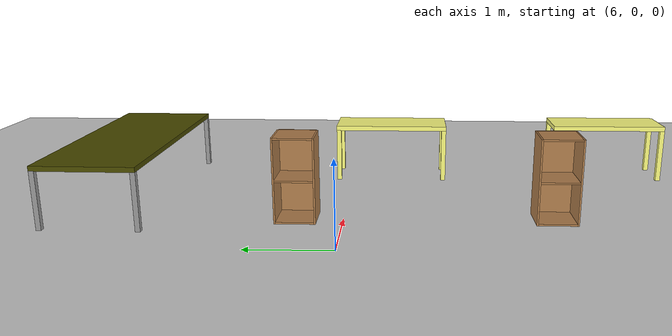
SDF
<sdf version="1.6">
 <world name="default">
  <model name="ground_plane">
   <static>1</static>
   <link name="link">
    <collision name="collision">
     <geometry><plane><normal>0 0 1</normal><size>100 100</size></plane></geometry>
     <surface><friction><ode><mu>100</mu><mu2>50</mu2></ode></friction></surface>
    </collision>
    <visual name="visual">
     <cast_shadows>0</cast_shadows>
     <geometry><plane><normal>0 0 1</normal><size>100 100</size></plane></geometry>
     <material>
      <script><uri>file://media/materials/scripts/gazebo.material</uri><name>Gazebo/Grey</name></script>
     </material>
    </visual>
   </link>
  </model>
  <model name="table_clone_6">
   <link name="link_0">
    <pose>0 2e-06 0.304 0 -0 0</pose>
    <inertial>
     <mass>1</mass>
     <inertia>
      <ixx>0.166667</ixx>
      <ixy>0</ixy>
      <ixz>0</ixz>
      <iyy>0.166667</iyy>
      <iyz>0</iyz>
      <izz>0.166667</izz>
     </inertia>
    </inertial>
    <visual name="visual">
     <geometry><box><size>0.6 1.5 0.06</size></box></geometry>
     <material>
      <lighting>1</lighting>
      <script><uri>file://media/materials/scripts/gazebo.material</uri><name>Gazebo/Grey</name></script>
      <shader type="pixel"><normal_map>__default__</normal_map></shader>
      <ambient>1 1 0.5 1</ambient>
      <diffuse>0.7 0.7 0.7 1</diffuse>
      <specular>0.01 0.01 0.01 1</specular>
      <emissive>0 0 0 1</emissive>
     </material>
    </visual>
    <collision name="collision">
     <geometry><box><size>0.6 1.5 0.06</size></box></geometry>
     <surface>
      <friction>
       <ode><mu>1</mu><mu2>1</mu2><fdir1>0 0 0</fdir1><slip1>0</slip1><slip2>0</slip2></ode>
       <torsional>
        <coefficient>1</coefficient>
        <patch_radius>0</patch_radius>
        <surface_radius>0</surface_radius>
        <use_patch_radius>1</use_patch_radius>
        <ode><slip>0</slip></ode>
       </torsional>
      </friction>
      <bounce><restitution_coefficient>0</restitution_coefficient><threshold>1e+06</threshold></bounce>
      <contact>
       <collide_without_contact>0</collide_without_contact>
       <collide_without_contact_bitmask>1</collide_without_contact_bitmask>
       <collide_bitmask>1</collide_bitmask>
       <ode>
        <soft_cfm>0</soft_cfm>
        <soft_erp>0.2</soft_erp>
        <kp>1e+13</kp>
        <kd>1</kd>
        <max_vel>0.01</max_vel>
        <min_depth>0</min_depth>
       </ode>
       <bullet>
        <split_impulse>1</split_impulse>
        <split_impulse_penetration_threshold>-0.01</split_impulse_penetration_threshold>
        <soft_cfm>0</soft_cfm>
        <soft_erp>0.2</soft_erp>
        <kp>1e+13</kp>
        <kd>1</kd>
       </bullet>
      </contact>
     </surface>
    </collision>
   </link>
   <link name="link_1">
    <pose>0.27 -0.719998 -0.076 0 -0 0</pose>
    <inertial>
     <mass>1</mass>
     <inertia>
      <ixx>0.166667</ixx>
      <ixy>0</ixy>
      <ixz>0</ixz>
      <iyy>0.166667</iyy>
      <iyz>0</iyz>
      <izz>0.166667</izz>
     </inertia>
    </inertial>
    <visual name="visual">
     <geometry><box><size>0.06 0.06 0.7</size></box></geometry>
     <material>
      <lighting>1</lighting>
      <script><uri>file://media/materials/scripts/gazebo.material</uri><name>Gazebo/Grey</name></script>
      <shader type="pixel"><normal_map>__default__</normal_map></shader>
      <ambient>1 1 0.5 1</ambient>
      <diffuse>0.7 0.7 0.7 1</diffuse>
      <specular>0.01 0.01 0.01 1</specular>
      <emissive>0 0 0 1</emissive>
     </material>
    </visual>
    <collision name="collision">
     <geometry><box><size>0.06 0.06 0.7</size></box></geometry>
     <surface>
      <friction>
       <ode><mu>1</mu><mu2>1</mu2><fdir1>0 0 0</fdir1><slip1>0</slip1><slip2>0</slip2></ode>
       <torsional>
        <coefficient>1</coefficient>
        <patch_radius>0</patch_radius>
        <surface_radius>0</surface_radius>
        <use_patch_radius>1</use_patch_radius>
        <ode><slip>0</slip></ode>
       </torsional>
      </friction>
      <bounce><restitution_coefficient>0</restitution_coefficient><threshold>1e+06</threshold></bounce>
      <contact>
       <collide_without_contact>0</collide_without_contact>
       <collide_without_contact_bitmask>1</collide_without_contact_bitmask>
       <collide_bitmask>1</collide_bitmask>
       <ode>
        <soft_cfm>0</soft_cfm>
        <soft_erp>0.2</soft_erp>
        <kp>1e+13</kp>
        <kd>1</kd>
        <max_vel>0.01</max_vel>
        <min_depth>0</min_depth>
       </ode>
       <bullet>
        <split_impulse>1</split_impulse>
        <split_impulse_penetration_threshold>-0.01</split_impulse_penetration_threshold>
        <soft_cfm>0</soft_cfm>
        <soft_erp>0.2</soft_erp>
        <kp>1e+13</kp>
        <kd>1</kd>
       </bullet>
      </contact>
     </surface>
    </collision>
   </link>
   <link name="link_1_clone">
    <pose>-0.27 -0.719998 -0.076 0 -0 0</pose>
    <inertial>
     <mass>1</mass>
     <inertia>
      <ixx>0.166667</ixx>
      <ixy>0</ixy>
      <ixz>0</ixz>
      <iyy>0.166667</iyy>
      <iyz>0</iyz>
      <izz>0.166667</izz>
     </inertia>
    </inertial>
    <visual name="visual">
     <geometry><box><size>0.06 0.06 0.7</size></box></geometry>
     <material>
      <lighting>1</lighting>
      <script><uri>file://media/materials/scripts/gazebo.material</uri><name>Gazebo/Grey</name></script>
      <shader type="pixel"><normal_map>__default__</normal_map></shader>
      <ambient>1 1 0.5 1</ambient>
      <diffuse>0.7 0.7 0.7 1</diffuse>
      <specular>0.01 0.01 0.01 1</specular>
      <emissive>0 0 0 1</emissive>
     </material>
    </visual>
    <collision name="collision">
     <geometry><box><size>0.06 0.06 0.7</size></box></geometry>
     <surface>
      <friction>
       <ode><mu>1</mu><mu2>1</mu2><fdir1>0 0 0</fdir1><slip1>0</slip1><slip2>0</slip2></ode>
       <torsional>
        <coefficient>1</coefficient>
        <patch_radius>0</patch_radius>
        <surface_radius>0</surface_radius>
        <use_patch_radius>1</use_patch_radius>
        <ode><slip>0</slip></ode>
       </torsional>
      </friction>
      <bounce><restitution_coefficient>0</restitution_coefficient><threshold>1e+06</threshold></bounce>
      <contact>
       <collide_without_contact>0</collide_without_contact>
       <collide_without_contact_bitmask>1</collide_without_contact_bitmask>
       <collide_bitmask>1</collide_bitmask>
       <ode>
        <soft_cfm>0</soft_cfm>
        <soft_erp>0.2</soft_erp>
        <kp>1e+13</kp>
        <kd>1</kd>
        <max_vel>0.01</max_vel>
        <min_depth>0</min_depth>
       </ode>
       <bullet>
        <split_impulse>1</split_impulse>
        <split_impulse_penetration_threshold>-0.01</split_impulse_penetration_threshold>
        <soft_cfm>0</soft_cfm>
        <soft_erp>0.2</soft_erp>
        <kp>1e+13</kp>
        <kd>1</kd>
       </bullet>
      </contact>
     </surface>
    </collision>
   </link>
   <link name="link_1_clone_0">
    <pose>0.27 0.720002 -0.076 0 -0 0</pose>
    <inertial>
     <mass>1</mass>
     <inertia>
      <ixx>0.166667</ixx>
      <ixy>0</ixy>
      <ixz>0</ixz>
      <iyy>0.166667</iyy>
      <iyz>0</iyz>
      <izz>0.166667</izz>
     </inertia>
    </inertial>
    <visual name="visual">
     <geometry><box><size>0.06 0.06 0.7</size></box></geometry>
     <material>
      <lighting>1</lighting>
      <script><uri>file://media/materials/scripts/gazebo.material</uri><name>Gazebo/Grey</name></script>
      <shader type="pixel"><normal_map>__default__</normal_map></shader>
      <ambient>1 1 0.5 1</ambient>
      <diffuse>0.7 0.7 0.7 1</diffuse>
      <specular>0.01 0.01 0.01 1</specular>
      <emissive>0 0 0 1</emissive>
     </material>
    </visual>
    <collision name="collision">
     <geometry><box><size>0.06 0.06 0.7</size></box></geometry>
     <surface>
      <friction>
       <ode><mu>1</mu><mu2>1</mu2><fdir1>0 0 0</fdir1><slip1>0</slip1><slip2>0</slip2></ode>
       <torsional>
        <coefficient>1</coefficient>
        <patch_radius>0</patch_radius>
        <surface_radius>0</surface_radius>
        <use_patch_radius>1</use_patch_radius>
        <ode><slip>0</slip></ode>
       </torsional>
      </friction>
      <bounce><restitution_coefficient>0</restitution_coefficient><threshold>1e+06</threshold></bounce>
      <contact>
       <collide_without_contact>0</collide_without_contact>
       <collide_without_contact_bitmask>1</collide_without_contact_bitmask>
       <collide_bitmask>1</collide_bitmask>
       <ode>
        <soft_cfm>0</soft_cfm>
        <soft_erp>0.2</soft_erp>
        <kp>1e+13</kp>
        <kd>1</kd>
        <max_vel>0.01</max_vel>
        <min_depth>0</min_depth>
       </ode>
       <bullet>
        <split_impulse>1</split_impulse>
        <split_impulse_penetration_threshold>-0.01</split_impulse_penetration_threshold>
        <soft_cfm>0</soft_cfm>
        <soft_erp>0.2</soft_erp>
        <kp>1e+13</kp>
        <kd>1</kd>
       </bullet>
      </contact>
     </surface>
    </collision>
   </link>
   <link name="link_1_clone_1">
    <pose>-0.27 0.720002 -0.076 0 -0 0</pose>
    <inertial>
     <mass>1</mass>
     <inertia>
      <ixx>0.166667</ixx>
      <ixy>0</ixy>
      <ixz>0</ixz>
      <iyy>0.166667</iyy>
      <iyz>0</iyz>
      <izz>0.166667</izz>
     </inertia>
    </inertial>
    <visual name="visual">
     <geometry><box><size>0.06 0.06 0.7</size></box></geometry>
     <material>
      <lighting>1</lighting>
      <script><uri>file://media/materials/scripts/gazebo.material</uri><name>Gazebo/Grey</name></script>
      <shader type="pixel"><normal_map>__default__</normal_map></shader>
      <ambient>1 1 0.5 1</ambient>
      <diffuse>0.7 0.7 0.7 1</diffuse>
      <specular>0.01 0.01 0.01 1</specular>
      <emissive>0 0 0 1</emissive>
     </material>
    </visual>
    <collision name="collision">
     <geometry><box><size>0.06 0.06 0.7</size></box></geometry>
     <surface>
      <friction>
       <ode><mu>1</mu><mu2>1</mu2><fdir1>0 0 0</fdir1><slip1>0</slip1><slip2>0</slip2></ode>
       <torsional>
        <coefficient>1</coefficient>
        <patch_radius>0</patch_radius>
        <surface_radius>0</surface_radius>
        <use_patch_radius>1</use_patch_radius>
        <ode><slip>0</slip></ode>
       </torsional>
      </friction>
      <bounce><restitution_coefficient>0</restitution_coefficient><threshold>1e+06</threshold></bounce>
      <contact>
       <collide_without_contact>0</collide_without_contact>
       <collide_without_contact_bitmask>1</collide_without_contact_bitmask>
       <collide_bitmask>1</collide_bitmask>
       <ode>
        <soft_cfm>0</soft_cfm>
        <soft_erp>0.2</soft_erp>
        <kp>1e+13</kp>
        <kd>1</kd>
        <max_vel>0.01</max_vel>
        <min_depth>0</min_depth>
       </ode>
       <bullet>
        <split_impulse>1</split_impulse>
        <split_impulse_penetration_threshold>-0.01</split_impulse_penetration_threshold>
        <soft_cfm>0</soft_cfm>
        <soft_erp>0.2</soft_erp>
        <kp>1e+13</kp>
        <kd>1</kd>
       </bullet>
      </contact>
     </surface>
    </collision>
   </link>
   <joint name="link_0_JOINT_0" type="fixed">
    <parent>link_0</parent>
    <child>link_1</child>
    <physics>
     <ode><limit><cfm>0</cfm><erp>0.2</erp></limit><suspension><cfm>0</cfm><erp>0.2</erp></suspension></ode>
    </physics>
   </joint>
   <joint name="link_0_JOINT_1" type="fixed">
    <parent>link_0</parent>
    <child>link_1_clone</child>
    <physics>
     <ode><limit><cfm>0</cfm><erp>0.2</erp></limit><suspension><cfm>0</cfm><erp>0.2</erp></suspension></ode>
    </physics>
   </joint>
   <joint name="link_0_JOINT_2" type="fixed">
    <parent>link_0</parent>
    <child>link_1_clone_1</child>
    <physics>
     <ode><limit><cfm>0</cfm><erp>0.2</erp></limit><suspension><cfm>0</cfm><erp>0.2</erp></suspension></ode>
    </physics>
   </joint>
   <joint name="link_0_JOINT_3" type="fixed">
    <parent>link_0</parent>
    <child>link_1_clone_0</child>
    <physics>
     <ode><limit><cfm>0</cfm><erp>0.2</erp></limit><suspension><cfm>0</cfm><erp>0.2</erp></suspension></ode>
    </physics>
   </joint>
   <static>0</static>
   <pose>8.96614 -0.517696 0.426 0 -1e-06 -0.000238</pose>
  </model>
  <model name="table_clone_7">
   <link name="link_0">
    <pose>0 2e-06 0.304 0 -0 0</pose>
    <inertial>
     <mass>1</mass>
     <inertia>
      <ixx>0.166667</ixx>
      <ixy>0</ixy>
      <ixz>0</ixz>
      <iyy>0.166667</iyy>
      <iyz>0</iyz>
      <izz>0.166667</izz>
     </inertia>
    </inertial>
    <visual name="visual">
     <geometry><box><size>0.6 1.5 0.06</size></box></geometry>
     <material>
      <lighting>1</lighting>
      <script><uri>file://media/materials/scripts/gazebo.material</uri><name>Gazebo/Grey</name></script>
      <shader type="pixel"><normal_map>__default__</normal_map></shader>
      <ambient>1 1 0.5 1</ambient>
      <diffuse>0.7 0.7 0.7 1</diffuse>
      <specular>0.01 0.01 0.01 1</specular>
      <emissive>0 0 0 1</emissive>
     </material>
    </visual>
    <collision name="collision">
     <geometry><box><size>0.6 1.5 0.06</size></box></geometry>
     <surface>
      <friction>
       <ode><mu>1</mu><mu2>1</mu2><fdir1>0 0 0</fdir1><slip1>0</slip1><slip2>0</slip2></ode>
       <torsional>
        <coefficient>1</coefficient>
        <patch_radius>0</patch_radius>
        <surface_radius>0</surface_radius>
        <use_patch_radius>1</use_patch_radius>
        <ode><slip>0</slip></ode>
       </torsional>
      </friction>
      <bounce><restitution_coefficient>0</restitution_coefficient><threshold>1e+06</threshold></bounce>
      <contact>
       <collide_without_contact>0</collide_without_contact>
       <collide_without_contact_bitmask>1</collide_without_contact_bitmask>
       <collide_bitmask>1</collide_bitmask>
       <ode>
        <soft_cfm>0</soft_cfm>
        <soft_erp>0.2</soft_erp>
        <kp>1e+13</kp>
        <kd>1</kd>
        <max_vel>0.01</max_vel>
        <min_depth>0</min_depth>
       </ode>
       <bullet>
        <split_impulse>1</split_impulse>
        <split_impulse_penetration_threshold>-0.01</split_impulse_penetration_threshold>
        <soft_cfm>0</soft_cfm>
        <soft_erp>0.2</soft_erp>
        <kp>1e+13</kp>
        <kd>1</kd>
       </bullet>
      </contact>
     </surface>
    </collision>
   </link>
   <link name="link_1">
    <pose>0.27 -0.719998 -0.076 0 -0 0</pose>
    <inertial>
     <mass>1</mass>
     <inertia>
      <ixx>0.166667</ixx>
      <ixy>0</ixy>
      <ixz>0</ixz>
      <iyy>0.166667</iyy>
      <iyz>0</iyz>
      <izz>0.166667</izz>
     </inertia>
    </inertial>
    <visual name="visual">
     <geometry><box><size>0.06 0.06 0.7</size></box></geometry>
     <material>
      <lighting>1</lighting>
      <script><uri>file://media/materials/scripts/gazebo.material</uri><name>Gazebo/Grey</name></script>
      <shader type="pixel"><normal_map>__default__</normal_map></shader>
      <ambient>1 1 0.5 1</ambient>
      <diffuse>0.7 0.7 0.7 1</diffuse>
      <specular>0.01 0.01 0.01 1</specular>
      <emissive>0 0 0 1</emissive>
     </material>
    </visual>
    <collision name="collision">
     <geometry><box><size>0.06 0.06 0.7</size></box></geometry>
     <surface>
      <friction>
       <ode><mu>1</mu><mu2>1</mu2><fdir1>0 0 0</fdir1><slip1>0</slip1><slip2>0</slip2></ode>
       <torsional>
        <coefficient>1</coefficient>
        <patch_radius>0</patch_radius>
        <surface_radius>0</surface_radius>
        <use_patch_radius>1</use_patch_radius>
        <ode><slip>0</slip></ode>
       </torsional>
      </friction>
      <bounce><restitution_coefficient>0</restitution_coefficient><threshold>1e+06</threshold></bounce>
      <contact>
       <collide_without_contact>0</collide_without_contact>
       <collide_without_contact_bitmask>1</collide_without_contact_bitmask>
       <collide_bitmask>1</collide_bitmask>
       <ode>
        <soft_cfm>0</soft_cfm>
        <soft_erp>0.2</soft_erp>
        <kp>1e+13</kp>
        <kd>1</kd>
        <max_vel>0.01</max_vel>
        <min_depth>0</min_depth>
       </ode>
       <bullet>
        <split_impulse>1</split_impulse>
        <split_impulse_penetration_threshold>-0.01</split_impulse_penetration_threshold>
        <soft_cfm>0</soft_cfm>
        <soft_erp>0.2</soft_erp>
        <kp>1e+13</kp>
        <kd>1</kd>
       </bullet>
      </contact>
     </surface>
    </collision>
   </link>
   <link name="link_1_clone">
    <pose>-0.27 -0.719998 -0.076 0 -0 0</pose>
    <inertial>
     <mass>1</mass>
     <inertia>
      <ixx>0.166667</ixx>
      <ixy>0</ixy>
      <ixz>0</ixz>
      <iyy>0.166667</iyy>
      <iyz>0</iyz>
      <izz>0.166667</izz>
     </inertia>
    </inertial>
    <visual name="visual">
     <geometry><box><size>0.06 0.06 0.7</size></box></geometry>
     <material>
      <lighting>1</lighting>
      <script><uri>file://media/materials/scripts/gazebo.material</uri><name>Gazebo/Grey</name></script>
      <shader type="pixel"><normal_map>__default__</normal_map></shader>
      <ambient>1 1 0.5 1</ambient>
      <diffuse>0.7 0.7 0.7 1</diffuse>
      <specular>0.01 0.01 0.01 1</specular>
      <emissive>0 0 0 1</emissive>
     </material>
    </visual>
    <collision name="collision">
     <geometry><box><size>0.06 0.06 0.7</size></box></geometry>
     <surface>
      <friction>
       <ode><mu>1</mu><mu2>1</mu2><fdir1>0 0 0</fdir1><slip1>0</slip1><slip2>0</slip2></ode>
       <torsional>
        <coefficient>1</coefficient>
        <patch_radius>0</patch_radius>
        <surface_radius>0</surface_radius>
        <use_patch_radius>1</use_patch_radius>
        <ode><slip>0</slip></ode>
       </torsional>
      </friction>
      <bounce><restitution_coefficient>0</restitution_coefficient><threshold>1e+06</threshold></bounce>
      <contact>
       <collide_without_contact>0</collide_without_contact>
       <collide_without_contact_bitmask>1</collide_without_contact_bitmask>
       <collide_bitmask>1</collide_bitmask>
       <ode>
        <soft_cfm>0</soft_cfm>
        <soft_erp>0.2</soft_erp>
        <kp>1e+13</kp>
        <kd>1</kd>
        <max_vel>0.01</max_vel>
        <min_depth>0</min_depth>
       </ode>
       <bullet>
        <split_impulse>1</split_impulse>
        <split_impulse_penetration_threshold>-0.01</split_impulse_penetration_threshold>
        <soft_cfm>0</soft_cfm>
        <soft_erp>0.2</soft_erp>
        <kp>1e+13</kp>
        <kd>1</kd>
       </bullet>
      </contact>
     </surface>
    </collision>
   </link>
   <link name="link_1_clone_0">
    <pose>0.27 0.720002 -0.076 0 -0 0</pose>
    <inertial>
     <mass>1</mass>
     <inertia>
      <ixx>0.166667</ixx>
      <ixy>0</ixy>
      <ixz>0</ixz>
      <iyy>0.166667</iyy>
      <iyz>0</iyz>
      <izz>0.166667</izz>
     </inertia>
    </inertial>
    <visual name="visual">
     <geometry><box><size>0.06 0.06 0.7</size></box></geometry>
     <material>
      <lighting>1</lighting>
      <script><uri>file://media/materials/scripts/gazebo.material</uri><name>Gazebo/Grey</name></script>
      <shader type="pixel"><normal_map>__default__</normal_map></shader>
      <ambient>1 1 0.5 1</ambient>
      <diffuse>0.7 0.7 0.7 1</diffuse>
      <specular>0.01 0.01 0.01 1</specular>
      <emissive>0 0 0 1</emissive>
     </material>
    </visual>
    <collision name="collision">
     <geometry><box><size>0.06 0.06 0.7</size></box></geometry>
     <surface>
      <friction>
       <ode><mu>1</mu><mu2>1</mu2><fdir1>0 0 0</fdir1><slip1>0</slip1><slip2>0</slip2></ode>
       <torsional>
        <coefficient>1</coefficient>
        <patch_radius>0</patch_radius>
        <surface_radius>0</surface_radius>
        <use_patch_radius>1</use_patch_radius>
        <ode><slip>0</slip></ode>
       </torsional>
      </friction>
      <bounce><restitution_coefficient>0</restitution_coefficient><threshold>1e+06</threshold></bounce>
      <contact>
       <collide_without_contact>0</collide_without_contact>
       <collide_without_contact_bitmask>1</collide_without_contact_bitmask>
       <collide_bitmask>1</collide_bitmask>
       <ode>
        <soft_cfm>0</soft_cfm>
        <soft_erp>0.2</soft_erp>
        <kp>1e+13</kp>
        <kd>1</kd>
        <max_vel>0.01</max_vel>
        <min_depth>0</min_depth>
       </ode>
       <bullet>
        <split_impulse>1</split_impulse>
        <split_impulse_penetration_threshold>-0.01</split_impulse_penetration_threshold>
        <soft_cfm>0</soft_cfm>
        <soft_erp>0.2</soft_erp>
        <kp>1e+13</kp>
        <kd>1</kd>
       </bullet>
      </contact>
     </surface>
    </collision>
   </link>
   <link name="link_1_clone_1">
    <pose>-0.27 0.720002 -0.076 0 -0 0</pose>
    <inertial>
     <mass>1</mass>
     <inertia>
      <ixx>0.166667</ixx>
      <ixy>0</ixy>
      <ixz>0</ixz>
      <iyy>0.166667</iyy>
      <iyz>0</iyz>
      <izz>0.166667</izz>
     </inertia>
    </inertial>
    <visual name="visual">
     <geometry><box><size>0.06 0.06 0.7</size></box></geometry>
     <material>
      <lighting>1</lighting>
      <script><uri>file://media/materials/scripts/gazebo.material</uri><name>Gazebo/Grey</name></script>
      <shader type="pixel"><normal_map>__default__</normal_map></shader>
      <ambient>1 1 0.5 1</ambient>
      <diffuse>0.7 0.7 0.7 1</diffuse>
      <specular>0.01 0.01 0.01 1</specular>
      <emissive>0 0 0 1</emissive>
     </material>
    </visual>
    <collision name="collision">
     <geometry><box><size>0.06 0.06 0.7</size></box></geometry>
     <surface>
      <friction>
       <ode><mu>1</mu><mu2>1</mu2><fdir1>0 0 0</fdir1><slip1>0</slip1><slip2>0</slip2></ode>
       <torsional>
        <coefficient>1</coefficient>
        <patch_radius>0</patch_radius>
        <surface_radius>0</surface_radius>
        <use_patch_radius>1</use_patch_radius>
        <ode><slip>0</slip></ode>
       </torsional>
      </friction>
      <bounce><restitution_coefficient>0</restitution_coefficient><threshold>1e+06</threshold></bounce>
      <contact>
       <collide_without_contact>0</collide_without_contact>
       <collide_without_contact_bitmask>1</collide_without_contact_bitmask>
       <collide_bitmask>1</collide_bitmask>
       <ode>
        <soft_cfm>0</soft_cfm>
        <soft_erp>0.2</soft_erp>
        <kp>1e+13</kp>
        <kd>1</kd>
        <max_vel>0.01</max_vel>
        <min_depth>0</min_depth>
       </ode>
       <bullet>
        <split_impulse>1</split_impulse>
        <split_impulse_penetration_threshold>-0.01</split_impulse_penetration_threshold>
        <soft_cfm>0</soft_cfm>
        <soft_erp>0.2</soft_erp>
        <kp>1e+13</kp>
        <kd>1</kd>
       </bullet>
      </contact>
     </surface>
    </collision>
   </link>
   <joint name="link_0_JOINT_0" type="fixed">
    <parent>link_0</parent>
    <child>link_1</child>
    <physics>
     <ode><limit><cfm>0</cfm><erp>0.2</erp></limit><suspension><cfm>0</cfm><erp>0.2</erp></suspension></ode>
    </physics>
   </joint>
   <joint name="link_0_JOINT_1" type="fixed">
    <parent>link_0</parent>
    <child>link_1_clone</child>
    <physics>
     <ode><limit><cfm>0</cfm><erp>0.2</erp></limit><suspension><cfm>0</cfm><erp>0.2</erp></suspension></ode>
    </physics>
   </joint>
   <joint name="link_0_JOINT_2" type="fixed">
    <parent>link_0</parent>
    <child>link_1_clone_1</child>
    <physics>
     <ode><limit><cfm>0</cfm><erp>0.2</erp></limit><suspension><cfm>0</cfm><erp>0.2</erp></suspension></ode>
    </physics>
   </joint>
   <joint name="link_0_JOINT_3" type="fixed">
    <parent>link_0</parent>
    <child>link_1_clone_0</child>
    <physics>
     <ode><limit><cfm>0</cfm><erp>0.2</erp></limit><suspension><cfm>0</cfm><erp>0.2</erp></suspension></ode>
    </physics>
   </joint>
   <static>0</static>
   <pose>9.06371 -3.50678 0.426 -0 2e-06 -0.000236</pose>
  </model>
  <model name="bigtable_0_clone_0">
   <link name="link_0">
    <pose>0 0 0.3 0 -0 0</pose>
    <inertial>
     <mass>1</mass>
     <inertia>
      <ixx>0.166667</ixx>
      <ixy>0</ixy>
      <ixz>0</ixz>
      <iyy>0.166667</iyy>
      <iyz>0</iyz>
      <izz>0.166667</izz>
     </inertia>
    </inertial>
    <visual name="visual">
     <geometry><box><size>1.2 3 0.06</size></box></geometry>
     <material>
      <lighting>1</lighting>
      <script><uri>file://media/materials/scripts/gazebo.material</uri><name>Gazebo/Grey</name></script>
      <shader type="pixel"><normal_map>__default__</normal_map></shader>
      <ambient>0.3 0.3 0 1</ambient>
      <diffuse>0.7 0.7 0.7 1</diffuse>
      <specular>0.01 0.01 0.01 1</specular>
      <emissive>0 0 0 1</emissive>
     </material>
    </visual>
    <collision name="collision">
     <geometry><box><size>1.2 3 0.06</size></box></geometry>
     <surface>
      <friction>
       <ode><mu>1</mu><mu2>1</mu2><fdir1>0 0 0</fdir1><slip1>0</slip1><slip2>0</slip2></ode>
       <torsional>
        <coefficient>1</coefficient>
        <patch_radius>0</patch_radius>
        <surface_radius>0</surface_radius>
        <use_patch_radius>1</use_patch_radius>
        <ode><slip>0</slip></ode>
       </torsional>
      </friction>
      <bounce><restitution_coefficient>0</restitution_coefficient><threshold>1e+06</threshold></bounce>
      <contact>
       <collide_without_contact>0</collide_without_contact>
       <collide_without_contact_bitmask>1</collide_without_contact_bitmask>
       <collide_bitmask>1</collide_bitmask>
       <ode>
        <soft_cfm>0</soft_cfm>
        <soft_erp>0.2</soft_erp>
        <kp>1e+13</kp>
        <kd>1</kd>
        <max_vel>0.01</max_vel>
        <min_depth>0</min_depth>
       </ode>
       <bullet>
        <split_impulse>1</split_impulse>
        <split_impulse_penetration_threshold>-0.01</split_impulse_penetration_threshold>
        <soft_cfm>0</soft_cfm>
        <soft_erp>0.2</soft_erp>
        <kp>1e+13</kp>
        <kd>1</kd>
       </bullet>
      </contact>
     </surface>
    </collision>
   </link>
   <link name="link_1">
    <pose>-0.57 -1.47 -0.076 0 -0 0</pose>
    <inertial>
     <mass>1</mass>
     <inertia>
      <ixx>0.166667</ixx>
      <ixy>0</ixy>
      <ixz>0</ixz>
      <iyy>0.166667</iyy>
      <iyz>0</iyz>
      <izz>0.166667</izz>
     </inertia>
    </inertial>
    <visual name="visual">
     <geometry><box><size>0.06 0.06 0.7</size></box></geometry>
     <material>
      <lighting>1</lighting>
      <script><uri>file://media/materials/scripts/gazebo.material</uri><name>Gazebo/Grey</name></script>
      <shader type="pixel"><normal_map>__default__</normal_map></shader>
      <ambient>0.3 0.3 0.3 1</ambient>
      <diffuse>0.7 0.7 0.7 1</diffuse>
      <specular>0.01 0.01 0.01 1</specular>
      <emissive>0 0 0 1</emissive>
     </material>
    </visual>
    <collision name="collision">
     <geometry><box><size>0.06 0.06 0.7</size></box></geometry>
     <surface>
      <friction>
       <ode><mu>1</mu><mu2>1</mu2><fdir1>0 0 0</fdir1><slip1>0</slip1><slip2>0</slip2></ode>
       <torsional>
        <coefficient>1</coefficient>
        <patch_radius>0</patch_radius>
        <surface_radius>0</surface_radius>
        <use_patch_radius>1</use_patch_radius>
        <ode><slip>0</slip></ode>
       </torsional>
      </friction>
      <bounce><restitution_coefficient>0</restitution_coefficient><threshold>1e+06</threshold></bounce>
      <contact>
       <collide_without_contact>0</collide_without_contact>
       <collide_without_contact_bitmask>1</collide_without_contact_bitmask>
       <collide_bitmask>1</collide_bitmask>
       <ode>
        <soft_cfm>0</soft_cfm>
        <soft_erp>0.2</soft_erp>
        <kp>1e+13</kp>
        <kd>1</kd>
        <max_vel>0.01</max_vel>
        <min_depth>0</min_depth>
       </ode>
       <bullet>
        <split_impulse>1</split_impulse>
        <split_impulse_penetration_threshold>-0.01</split_impulse_penetration_threshold>
        <soft_cfm>0</soft_cfm>
        <soft_erp>0.2</soft_erp>
        <kp>1e+13</kp>
        <kd>1</kd>
       </bullet>
      </contact>
     </surface>
    </collision>
   </link>
   <link name="link_1_clone">
    <pose>0.57 -1.47 -0.076 0 -0 0</pose>
    <inertial>
     <mass>1</mass>
     <inertia>
      <ixx>0.166667</ixx>
      <ixy>0</ixy>
      <ixz>0</ixz>
      <iyy>0.166667</iyy>
      <iyz>0</iyz>
      <izz>0.166667</izz>
     </inertia>
    </inertial>
    <visual name="visual">
     <geometry><box><size>0.06 0.06 0.7</size></box></geometry>
     <material>
      <lighting>1</lighting>
      <script><uri>file://media/materials/scripts/gazebo.material</uri><name>Gazebo/Grey</name></script>
      <shader type="pixel"><normal_map>__default__</normal_map></shader>
      <ambient>0.3 0.3 0.3 1</ambient>
      <diffuse>0.7 0.7 0.7 1</diffuse>
      <specular>0.01 0.01 0.01 1</specular>
      <emissive>0 0 0 1</emissive>
     </material>
    </visual>
    <collision name="collision">
     <geometry><box><size>0.06 0.06 0.7</size></box></geometry>
     <surface>
      <friction>
       <ode><mu>1</mu><mu2>1</mu2><fdir1>0 0 0</fdir1><slip1>0</slip1><slip2>0</slip2></ode>
       <torsional>
        <coefficient>1</coefficient>
        <patch_radius>0</patch_radius>
        <surface_radius>0</surface_radius>
        <use_patch_radius>1</use_patch_radius>
        <ode><slip>0</slip></ode>
       </torsional>
      </friction>
      <bounce><restitution_coefficient>0</restitution_coefficient><threshold>1e+06</threshold></bounce>
      <contact>
       <collide_without_contact>0</collide_without_contact>
       <collide_without_contact_bitmask>1</collide_without_contact_bitmask>
       <collide_bitmask>1</collide_bitmask>
       <ode>
        <soft_cfm>0</soft_cfm>
        <soft_erp>0.2</soft_erp>
        <kp>1e+13</kp>
        <kd>1</kd>
        <max_vel>0.01</max_vel>
        <min_depth>0</min_depth>
       </ode>
       <bullet>
        <split_impulse>1</split_impulse>
        <split_impulse_penetration_threshold>-0.01</split_impulse_penetration_threshold>
        <soft_cfm>0</soft_cfm>
        <soft_erp>0.2</soft_erp>
        <kp>1e+13</kp>
        <kd>1</kd>
       </bullet>
      </contact>
     </surface>
    </collision>
   </link>
   <link name="link_1_clone_0">
    <pose>0.57 1.47 -0.076 0 -0 0</pose>
    <inertial>
     <mass>1</mass>
     <inertia>
      <ixx>0.166667</ixx>
      <ixy>0</ixy>
      <ixz>0</ixz>
      <iyy>0.166667</iyy>
      <iyz>0</iyz>
      <izz>0.166667</izz>
     </inertia>
    </inertial>
    <visual name="visual">
     <geometry><box><size>0.06 0.06 0.7</size></box></geometry>
     <material>
      <lighting>1</lighting>
      <script><uri>file://media/materials/scripts/gazebo.material</uri><name>Gazebo/Grey</name></script>
      <shader type="pixel"><normal_map>__default__</normal_map></shader>
      <ambient>0.3 0.3 0.3 1</ambient>
      <diffuse>0.7 0.7 0.7 1</diffuse>
      <specular>0.01 0.01 0.01 1</specular>
      <emissive>0 0 0 1</emissive>
     </material>
    </visual>
    <collision name="collision">
     <geometry><box><size>0.06 0.06 0.7</size></box></geometry>
     <surface>
      <friction>
       <ode><mu>1</mu><mu2>1</mu2><fdir1>0 0 0</fdir1><slip1>0</slip1><slip2>0</slip2></ode>
       <torsional>
        <coefficient>1</coefficient>
        <patch_radius>0</patch_radius>
        <surface_radius>0</surface_radius>
        <use_patch_radius>1</use_patch_radius>
        <ode><slip>0</slip></ode>
       </torsional>
      </friction>
      <bounce><restitution_coefficient>0</restitution_coefficient><threshold>1e+06</threshold></bounce>
      <contact>
       <collide_without_contact>0</collide_without_contact>
       <collide_without_contact_bitmask>1</collide_without_contact_bitmask>
       <collide_bitmask>1</collide_bitmask>
       <ode>
        <soft_cfm>0</soft_cfm>
        <soft_erp>0.2</soft_erp>
        <kp>1e+13</kp>
        <kd>1</kd>
        <max_vel>0.01</max_vel>
        <min_depth>0</min_depth>
       </ode>
       <bullet>
        <split_impulse>1</split_impulse>
        <split_impulse_penetration_threshold>-0.01</split_impulse_penetration_threshold>
        <soft_cfm>0</soft_cfm>
        <soft_erp>0.2</soft_erp>
        <kp>1e+13</kp>
        <kd>1</kd>
       </bullet>
      </contact>
     </surface>
    </collision>
   </link>
   <link name="link_1_clone_1">
    <pose>-0.57 1.47 -0.076 0 -0 0</pose>
    <inertial>
     <mass>1</mass>
     <inertia>
      <ixx>0.166667</ixx>
      <ixy>0</ixy>
      <ixz>0</ixz>
      <iyy>0.166667</iyy>
      <iyz>0</iyz>
      <izz>0.166667</izz>
     </inertia>
    </inertial>
    <visual name="visual">
     <geometry><box><size>0.06 0.06 0.7</size></box></geometry>
     <material>
      <lighting>1</lighting>
      <script><uri>file://media/materials/scripts/gazebo.material</uri><name>Gazebo/Grey</name></script>
      <shader type="pixel"><normal_map>__default__</normal_map></shader>
      <ambient>0.3 0.3 0.3 1</ambient>
      <diffuse>0.7 0.7 0.7 1</diffuse>
      <specular>0.01 0.01 0.01 1</specular>
      <emissive>0 0 0 1</emissive>
     </material>
    </visual>
    <collision name="collision">
     <geometry><box><size>0.06 0.06 0.7</size></box></geometry>
     <surface>
      <friction>
       <ode><mu>1</mu><mu2>1</mu2><fdir1>0 0 0</fdir1><slip1>0</slip1><slip2>0</slip2></ode>
       <torsional>
        <coefficient>1</coefficient>
        <patch_radius>0</patch_radius>
        <surface_radius>0</surface_radius>
        <use_patch_radius>1</use_patch_radius>
        <ode><slip>0</slip></ode>
       </torsional>
      </friction>
      <bounce><restitution_coefficient>0</restitution_coefficient><threshold>1e+06</threshold></bounce>
      <contact>
       <collide_without_contact>0</collide_without_contact>
       <collide_without_contact_bitmask>1</collide_without_contact_bitmask>
       <collide_bitmask>1</collide_bitmask>
       <ode>
        <soft_cfm>0</soft_cfm>
        <soft_erp>0.2</soft_erp>
        <kp>1e+13</kp>
        <kd>1</kd>
        <max_vel>0.01</max_vel>
        <min_depth>0</min_depth>
       </ode>
       <bullet>
        <split_impulse>1</split_impulse>
        <split_impulse_penetration_threshold>-0.01</split_impulse_penetration_threshold>
        <soft_cfm>0</soft_cfm>
        <soft_erp>0.2</soft_erp>
        <kp>1e+13</kp>
        <kd>1</kd>
       </bullet>
      </contact>
     </surface>
    </collision>
   </link>
   <joint name="link_0_JOINT_0" type="screw">
    <parent>link_0</parent>
    <child>link_1</child>
    <pose>0 0 0.35 0 -0 0</pose>
    <axis>
     <xyz>0 0 1</xyz>
     <use_parent_model_frame>0</use_parent_model_frame>
     <limit><lower>-1e+16</lower><upper>1e+16</upper><effort>-1</effort><velocity>-1</velocity></limit>
     <dynamics>
      <spring_reference>0</spring_reference>
      <spring_stiffness>0</spring_stiffness>
      <damping>0</damping>
      <friction>0</friction>
     </dynamics>
    </axis>
    <physics>
     <ode><limit><cfm>0</cfm><erp>0.2</erp></limit><suspension><cfm>0</cfm><erp>0.2</erp></suspension></ode>
    </physics>
    <thread_pitch>1</thread_pitch>
   </joint>
   <joint name="link_0_JOINT_1" type="fixed">
    <parent>link_0</parent>
    <child>link_1_clone_1</child>
    <physics>
     <ode><limit><cfm>0</cfm><erp>0.2</erp></limit><suspension><cfm>0</cfm><erp>0.2</erp></suspension></ode>
    </physics>
   </joint>
   <joint name="link_0_JOINT_2" type="fixed">
    <parent>link_0</parent>
    <child>link_1_clone</child>
    <physics>
     <ode><limit><cfm>0</cfm><erp>0.2</erp></limit><suspension><cfm>0</cfm><erp>0.2</erp></suspension></ode>
    </physics>
   </joint>
   <joint name="link_0_JOINT_3" type="fixed">
    <parent>link_0</parent>
    <child>link_1_clone_0</child>
    <physics>
     <ode><limit><cfm>0</cfm><erp>0.2</erp></limit><suspension><cfm>0</cfm><erp>0.2</erp></suspension></ode>
    </physics>
   </joint>
   <static>0</static>
   <pose>7.9765 2.84122 0.426001 -1e-06 3e-06 -1.57597</pose>
  </model>
  <model name="cabinet_clone_0">
   <static>1</static>
   <link name="cabinet_bottom_plate">
    <inertial>
     <pose>0 0 -1 0 -0 0</pose>
     <inertia><ixx>2.05</ixx><ixy>0</ixy><ixz>0</ixz><iyy>2.05</iyy><iyz>0</iyz><izz>2.05</izz></inertia>
     <mass>25</mass>
    </inertial>
    <collision name="cabinet_bottom_plate_geom">
     <pose>0 0 0.01 0 -0 0</pose>
     <geometry><box><size>0.45 0.45 0.02</size></box></geometry>
    </collision>
    <visual name="cabinet_bottom_plate_geom_visual">
     <pose>0 0 0.01 0 -0 0</pose>
     <geometry><box><size>0.45 0.45 0.02</size></box></geometry>
     <material>
      <script><uri>file://media/materials/scripts/gazebo.material</uri><name>Gazebo/Wood</name></script>
     </material>
    </visual>
    <collision name="cabinet_bottom_plate_geom_cabinet_back_plate">
     <pose>0.235 0 0.51 0 -0 0</pose>
     <geometry><box><size>0.02 0.45 1.02</size></box></geometry>
    </collision>
    <visual name="cabinet_bottom_plate_geom_cabinet_back_plate_visual">
     <pose>0.235 0 0.51 0 -0 0</pose>
     <geometry><box><size>0.02 0.45 1.02</size></box></geometry>
     <material>
      <script><uri>file://media/materials/scripts/gazebo.material</uri><name>Gazebo/Wood</name></script>
     </material>
    </visual>
    <collision name="cabinet_bottom_plate_geom_cabinet_left_plate">
     <pose>0 0.235 0.51 0 -0 0</pose>
     <geometry><box><size>0.45 0.02 1.02</size></box></geometry>
    </collision>
    <visual name="cabinet_bottom_plate_geom_cabinet_left_plate_visual">
     <pose>0 0.235 0.51 0 -0 0</pose>
     <geometry><box><size>0.45 0.02 1.02</size></box></geometry>
     <material>
      <script><uri>file://media/materials/scripts/gazebo.material</uri><name>Gazebo/Wood</name></script>
     </material>
    </visual>
    <collision name="cabinet_bottom_plate_geom_cabinet_middle_plate">
     <pose>0 0 0.51 0 -0 0</pose>
     <geometry><box><size>0.45 0.45 0.02</size></box></geometry>
    </collision>
    <visual name="cabinet_bottom_plate_geom_cabinet_middle_plate_visual">
     <pose>0 0 0.51 0 -0 0</pose>
     <geometry><box><size>0.45 0.45 0.02</size></box></geometry>
     <material>
      <script><uri>file://media/materials/scripts/gazebo.material</uri><name>Gazebo/Wood</name></script>
     </material>
    </visual>
    <collision name="cabinet_bottom_plate_geom_cabinet_right_plate">
     <pose>0 -0.235 0.51 0 -0 0</pose>
     <geometry><box><size>0.45 0.02 1.02</size></box></geometry>
    </collision>
    <visual name="cabinet_bottom_plate_geom_cabinet_right_plate_visual">
     <pose>0 -0.235 0.51 0 -0 0</pose>
     <geometry><box><size>0.45 0.02 1.02</size></box></geometry>
     <material>
      <script><uri>file://media/materials/scripts/gazebo.material</uri><name>Gazebo/Wood</name></script>
     </material>
    </visual>
    <collision name="cabinet_bottom_plate_geom_cabinet_top_plate">
     <pose>0 0 1.01 0 -0 0</pose>
     <geometry><box><size>0.45 0.45 0.02</size></box></geometry>
    </collision>
    <visual name="cabinet_bottom_plate_geom_cabinet_top_plate_visual">
     <pose>0 0 1.01 0 -0 0</pose>
     <geometry><box><size>0.45 0.45 0.02</size></box></geometry>
     <material>
      <script><uri>file://media/materials/scripts/gazebo.material</uri><name>Gazebo/Wood</name></script>
     </material>
    </visual>
   </link>
   <pose>7.02887 0.55493 0 0 -0 0</pose>
  </model>
  <model name="cabinet_clone_1">
   <static>1</static>
   <link name="cabinet_bottom_plate">
    <inertial>
     <pose>0 0 -1 0 -0 0</pose>
     <inertia><ixx>2.05</ixx><ixy>0</ixy><ixz>0</ixz><iyy>2.05</iyy><iyz>0</iyz><izz>2.05</izz></inertia>
     <mass>25</mass>
    </inertial>
    <collision name="cabinet_bottom_plate_geom">
     <pose>0 0 0.01 0 -0 0</pose>
     <geometry><box><size>0.45 0.45 0.02</size></box></geometry>
    </collision>
    <visual name="cabinet_bottom_plate_geom_visual">
     <pose>0 0 0.01 0 -0 0</pose>
     <geometry><box><size>0.45 0.45 0.02</size></box></geometry>
     <material>
      <script><uri>file://media/materials/scripts/gazebo.material</uri><name>Gazebo/Wood</name></script>
     </material>
    </visual>
    <collision name="cabinet_bottom_plate_geom_cabinet_back_plate">
     <pose>0.235 0 0.51 0 -0 0</pose>
     <geometry><box><size>0.02 0.45 1.02</size></box></geometry>
    </collision>
    <visual name="cabinet_bottom_plate_geom_cabinet_back_plate_visual">
     <pose>0.235 0 0.51 0 -0 0</pose>
     <geometry><box><size>0.02 0.45 1.02</size></box></geometry>
     <material>
      <script><uri>file://media/materials/scripts/gazebo.material</uri><name>Gazebo/Wood</name></script>
     </material>
    </visual>
    <collision name="cabinet_bottom_plate_geom_cabinet_left_plate">
     <pose>0 0.235 0.51 0 -0 0</pose>
     <geometry><box><size>0.45 0.02 1.02</size></box></geometry>
    </collision>
    <visual name="cabinet_bottom_plate_geom_cabinet_left_plate_visual">
     <pose>0 0.235 0.51 0 -0 0</pose>
     <geometry><box><size>0.45 0.02 1.02</size></box></geometry>
     <material>
      <script><uri>file://media/materials/scripts/gazebo.material</uri><name>Gazebo/Wood</name></script>
     </material>
    </visual>
    <collision name="cabinet_bottom_plate_geom_cabinet_middle_plate">
     <pose>0 0 0.51 0 -0 0</pose>
     <geometry><box><size>0.45 0.45 0.02</size></box></geometry>
    </collision>
    <visual name="cabinet_bottom_plate_geom_cabinet_middle_plate_visual">
     <pose>0 0 0.51 0 -0 0</pose>
     <geometry><box><size>0.45 0.45 0.02</size></box></geometry>
     <material>
      <script><uri>file://media/materials/scripts/gazebo.material</uri><name>Gazebo/Wood</name></script>
     </material>
    </visual>
    <collision name="cabinet_bottom_plate_geom_cabinet_right_plate">
     <pose>0 -0.235 0.51 0 -0 0</pose>
     <geometry><box><size>0.45 0.02 1.02</size></box></geometry>
    </collision>
    <visual name="cabinet_bottom_plate_geom_cabinet_right_plate_visual">
     <pose>0 -0.235 0.51 0 -0 0</pose>
     <geometry><box><size>0.45 0.02 1.02</size></box></geometry>
     <material>
      <script><uri>file://media/materials/scripts/gazebo.material</uri><name>Gazebo/Wood</name></script>
     </material>
    </visual>
    <collision name="cabinet_bottom_plate_geom_cabinet_top_plate">
     <pose>0 0 1.01 0 -0 0</pose>
     <geometry><box><size>0.45 0.45 0.02</size></box></geometry>
    </collision>
    <visual name="cabinet_bottom_plate_geom_cabinet_top_plate_visual">
     <pose>0 0 1.01 0 -0 0</pose>
     <geometry><box><size>0.45 0.45 0.02</size></box></geometry>
     <material>
      <script><uri>file://media/materials/scripts/gazebo.material</uri><name>Gazebo/Wood</name></script>
     </material>
    </visual>
   </link>
   <pose>7.07932 -2.4875 0 0 -0 0</pose>
  </model>
 </world>
</sdf>
